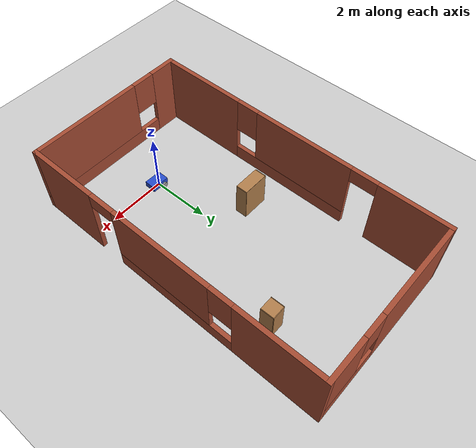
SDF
<sdf version="1.7">
 <world name="default">
  <light name="sun" type="directional">
   <pose>0 0 10 0 -0 0</pose>
   <diffuse>0.8 0.8 0.8 1</diffuse>
   <specular>0.2 0.2 0.2 1</specular>
   <attenuation>
    <range>1000</range>
    <constant>0.9</constant>
    <linear>0.01</linear>
    <quadratic>0.001</quadratic>
   </attenuation>
   <direction>-0.5 0.1 -0.9</direction>
   <spot><inner_angle>0</inner_angle><outer_angle>0</outer_angle><falloff>0</falloff></spot>
  </light>
  <model name="ground_plane">
   <static>1</static>
   <link name="link">
    <collision name="collision">
     <geometry><plane><normal>0 0 1</normal><size>100 100</size></plane></geometry>
     <surface>
      <contact><collide_bitmask>65535</collide_bitmask></contact>
      <friction><ode><mu>100</mu><mu2>50</mu2></ode></friction>
     </surface>
    </collision>
    <visual name="visual">
     <cast_shadows>0</cast_shadows>
     <geometry><plane><normal>0 0 1</normal><size>100 100</size></plane></geometry>
     <material>
      <script><uri>file://media/materials/scripts/gazebo.material</uri><name>Gazebo/Grey</name></script>
     </material>
    </visual>
   </link>
  </model>
  <gravity>0 0 -9.8</gravity>
  <magnetic_field>6e-06 2.3e-05 -4.2e-05</magnetic_field>
  <atmosphere type="adiabatic"/>
  <physics type="ode">
   <max_step_size>0.001</max_step_size>
   <real_time_factor>1</real_time_factor>
   <real_time_update_rate>1000</real_time_update_rate>
  </physics>
  <scene><ambient>0.4 0.4 0.4 1</ambient><background>0.7 0.7 0.7 1</background><shadows>1</shadows></scene>
  <audio><device>default</device></audio>
  <spherical_coordinates>
   <surface_model>EARTH_WGS84</surface_model>
   <latitude_deg>0</latitude_deg>
   <longitude_deg>0</longitude_deg>
   <elevation>0</elevation>
   <heading_deg>0</heading_deg>
  </spherical_coordinates>
  <model name="turtlebot">
   <link name="base_footprint_link">
    <inertial>
     <pose>0.018182 0 0.186364 0 -0 0</pose>
     <mass>5.5</mass>
     <inertia>
      <ixx>0.678894</ixx>
      <ixy>0</ixy>
      <ixz>0.0136364</ixz>
      <iyy>0.897076</iyy>
      <iyz>0</iyz>
      <izz>0.353515</izz>
     </inertia>
    </inertial>
    <collision name="base_footprint_link_fixed_joint_lump__base_link_collision">
     <pose>0 0 0.2 0 -0 0</pose>
     <geometry><box><size>0.6 0.4 0.2</size></box></geometry>
    </collision>
    <collision name="base_footprint_link_fixed_joint_lump__caster_wheel_link_collision_1">
     <pose>0.2 0 0.05 0 -0 0</pose>
     <geometry><sphere><radius>0.05</radius></sphere></geometry>
     <surface><friction><ode><mu>0.1</mu><mu2>0.1</mu2></ode></friction></surface>
    </collision>
    <visual name="base_footprint_link_fixed_joint_lump__base_link_visual">
     <pose>0 0 0.2 0 -0 0</pose>
     <geometry><box><size>0.6 0.4 0.2</size></box></geometry>
     <material>
      <script><name>Gazebo/Blue</name><uri>file://media/materials/scripts/gazebo.material</uri></script>
     </material>
    </visual>
    <visual name="base_footprint_link_fixed_joint_lump__caster_wheel_link_visual_1">
     <pose>0.2 0 0.05 0 -0 0</pose>
     <geometry><sphere><radius>0.05</radius></sphere></geometry>
     <material>
      <script><name>Gazebo/Grey</name><uri>file://media/materials/scripts/gazebo.material</uri></script>
     </material>
    </visual>
   </link>
   <joint name="base_left_wheel_joint" type="revolute">
    <pose relative_to="base_footprint_link">-0.15 0.225 0.1 0 -0 0</pose>
    <parent>base_footprint_link</parent>
    <child>left_wheel_link</child>
    <axis>
     <xyz>0 1 0</xyz>
     <limit><lower>-1e+16</lower><upper>1e+16</upper></limit>
     <dynamics><spring_reference>0</spring_reference><spring_stiffness>0</spring_stiffness></dynamics>
    </axis>
   </joint>
   <link name="left_wheel_link">
    <pose relative_to="base_left_wheel_joint">0 0 0 0 -0 0</pose>
    <inertial>
     <pose>0 0 0 1.5708 -0 0</pose>
     <mass>1</mass>
     <inertia><ixx>0.0108333</ixx><ixy>0</ixy><ixz>0</ixz><iyy>0.0108333</iyy><iyz>0</iyz><izz>0.02</izz></inertia>
    </inertial>
    <collision name="left_wheel_link_collision">
     <pose>0 0 0 1.5708 -0 0</pose>
     <geometry><cylinder><length>0.05</length><radius>0.1</radius></cylinder></geometry>
    </collision>
    <visual name="left_wheel_link_visual">
     <pose>0 0 0 1.5708 -0 0</pose>
     <geometry><cylinder><length>0.05</length><radius>0.1</radius></cylinder></geometry>
     <material>
      <script><name>Gazebo/Grey</name><uri>file://media/materials/scripts/gazebo.material</uri></script>
     </material>
    </visual>
   </link>
   <joint name="base_right_wheel_joint" type="revolute">
    <pose relative_to="base_footprint_link">-0.15 -0.225 0.1 0 -0 0</pose>
    <parent>base_footprint_link</parent>
    <child>right_wheel_link</child>
    <axis>
     <xyz>0 1 0</xyz>
     <limit><lower>-1e+16</lower><upper>1e+16</upper></limit>
     <dynamics><spring_reference>0</spring_reference><spring_stiffness>0</spring_stiffness></dynamics>
    </axis>
   </joint>
   <link name="right_wheel_link">
    <pose relative_to="base_right_wheel_joint">0 0 0 0 -0 0</pose>
    <inertial>
     <pose>0 0 0 1.5708 -0 0</pose>
     <mass>1</mass>
     <inertia><ixx>0.0108333</ixx><ixy>0</ixy><ixz>0</ixz><iyy>0.0108333</iyy><iyz>0</iyz><izz>0.02</izz></inertia>
    </inertial>
    <collision name="right_wheel_link_collision">
     <pose>0 0 0 1.5708 -0 0</pose>
     <geometry><cylinder><length>0.05</length><radius>0.1</radius></cylinder></geometry>
    </collision>
    <visual name="right_wheel_link_visual">
     <pose>0 0 0 1.5708 -0 0</pose>
     <geometry><cylinder><length>0.05</length><radius>0.1</radius></cylinder></geometry>
     <material>
      <script><name>Gazebo/Grey</name><uri>file://media/materials/scripts/gazebo.material</uri></script>
     </material>
    </visual>
   </link>
   <static>0</static>
   <plugin name="diff_drive_controller" filename="libgazebo_ros_diff_drive.so">
    <update_rate>50</update_rate>
    <left_joint>base_left_wheel_joint</left_joint>
    <right_joint>base_right_wheel_joint</right_joint>
    <wheel_separation>0.45</wheel_separation>
    <wheel_diameter>0.2</wheel_diameter>
    <publish_odom>1</publish_odom>
    <publish_odom_tf>1</publish_odom_tf>
    <publish_wheel_tf>1</publish_wheel_tf>
    <odometry_topic>odom</odometry_topic>
    <odometry_frame>odom</odometry_frame>
    <robot_base_frame>base_footprint_link</robot_base_frame>
   </plugin>
   <pose>0.105622 0.006227 -2e-06 0 -9e-06 -0.021023</pose>
  </model>
  <model name="bookshelf">
   <static>1</static>
   <link name="link">
    <inertial><mass>1</mass></inertial>
    <collision name="back">
     <pose>0 0.005 0.6 0 -0 0</pose>
     <geometry><box><size>0.9 0.01 1.2</size></box></geometry>
    </collision>
    <visual name="visual1">
     <pose>0 0.005 0.6 0 -0 0</pose>
     <geometry><box><size>0.9 0.01 1.2</size></box></geometry>
     <material>
      <script><uri>file://media/materials/scripts/gazebo.material</uri><name>Gazebo/Wood</name></script>
     </material>
    </visual>
    <collision name="left_side">
     <pose>0.45 -0.195 0.6 0 -0 0</pose>
     <geometry><box><size>0.02 0.4 1.2</size></box></geometry>
    </collision>
    <visual name="visual2">
     <pose>0.45 -0.195 0.6 0 -0 0</pose>
     <geometry><box><size>0.02 0.4 1.2</size></box></geometry>
     <material>
      <script><uri>file://media/materials/scripts/gazebo.material</uri><name>Gazebo/Wood</name></script>
     </material>
    </visual>
    <collision name="right_side">
     <pose>-0.45 -0.195 0.6 0 -0 0</pose>
     <geometry><box><size>0.02 0.4 1.2</size></box></geometry>
    </collision>
    <visual name="visual3">
     <pose>-0.45 -0.195 0.6 0 -0 0</pose>
     <geometry><box><size>0.02 0.4 1.2</size></box></geometry>
     <material>
      <script><uri>file://media/materials/scripts/gazebo.material</uri><name>Gazebo/Wood</name></script>
     </material>
    </visual>
    <collision name="bottom">
     <pose>0 -0.195 0.03 0 -0 0</pose>
     <geometry><box><size>0.88 0.4 0.06</size></box></geometry>
    </collision>
    <visual name="visual4">
     <pose>0 -0.195 0.03 0 -0 0</pose>
     <geometry><box><size>0.88 0.4 0.06</size></box></geometry>
     <material>
      <script><uri>file://media/materials/scripts/gazebo.material</uri><name>Gazebo/Wood</name></script>
     </material>
    </visual>
    <collision name="top">
     <pose>0 -0.195 1.19 0 -0 0</pose>
     <geometry><box><size>0.88 0.4 0.02</size></box></geometry>
    </collision>
    <visual name="visual5">
     <pose>0 -0.195 1.19 0 -0 0</pose>
     <geometry><box><size>0.88 0.4 0.02</size></box></geometry>
     <material>
      <script><uri>file://media/materials/scripts/gazebo.material</uri><name>Gazebo/Wood</name></script>
     </material>
    </visual>
    <collision name="low_shelf">
     <pose>0 -0.195 0.43 0 -0 0</pose>
     <geometry><box><size>0.88 0.4 0.02</size></box></geometry>
    </collision>
    <visual name="visual6">
     <pose>0 -0.195 0.43 0 -0 0</pose>
     <geometry><box><size>0.88 0.4 0.02</size></box></geometry>
     <material>
      <script><uri>file://media/materials/scripts/gazebo.material</uri><name>Gazebo/Wood</name></script>
     </material>
    </visual>
    <collision name="high_shelf">
     <pose>0 -0.195 0.8 0 -0 0</pose>
     <geometry><box><size>0.88 0.4 0.02</size></box></geometry>
    </collision>
    <visual name="visual7">
     <pose>0 -0.195 0.8 0 -0 0</pose>
     <geometry><box><size>0.88 0.4 0.02</size></box></geometry>
     <material>
      <script><uri>file://media/materials/scripts/gazebo.material</uri><name>Gazebo/Wood</name></script>
     </material>
    </visual>
   </link>
   <pose>-1.23898 3.14026 0.130858 0 -0 0</pose>
  </model>
  <model name="cabinet">
   <static>1</static>
   <link name="cabinet_bottom_plate">
    <inertial>
     <pose>0 0 -1 0 -0 0</pose>
     <inertia><ixx>2.05</ixx><ixy>0</ixy><ixz>0</ixz><iyy>2.05</iyy><iyz>0</iyz><izz>2.05</izz></inertia>
     <mass>25</mass>
    </inertial>
    <collision name="cabinet_bottom_plate_geom">
     <pose>0 0 0.01 0 -0 0</pose>
     <geometry><box><size>0.45 0.45 0.02</size></box></geometry>
    </collision>
    <visual name="cabinet_bottom_plate_geom_visual">
     <pose>0 0 0.01 0 -0 0</pose>
     <geometry><box><size>0.45 0.45 0.02</size></box></geometry>
     <material>
      <script><uri>file://media/materials/scripts/gazebo.material</uri><name>Gazebo/Wood</name></script>
     </material>
    </visual>
    <collision name="cabinet_bottom_plate_geom_cabinet_back_plate">
     <pose>0.235 0 0.51 0 -0 0</pose>
     <geometry><box><size>0.02 0.45 1.02</size></box></geometry>
    </collision>
    <visual name="cabinet_bottom_plate_geom_cabinet_back_plate_visual">
     <pose>0.235 0 0.51 0 -0 0</pose>
     <geometry><box><size>0.02 0.45 1.02</size></box></geometry>
     <material>
      <script><uri>file://media/materials/scripts/gazebo.material</uri><name>Gazebo/Wood</name></script>
     </material>
    </visual>
    <collision name="cabinet_bottom_plate_geom_cabinet_left_plate">
     <pose>0 0.235 0.51 0 -0 0</pose>
     <geometry><box><size>0.45 0.02 1.02</size></box></geometry>
    </collision>
    <visual name="cabinet_bottom_plate_geom_cabinet_left_plate_visual">
     <pose>0 0.235 0.51 0 -0 0</pose>
     <geometry><box><size>0.45 0.02 1.02</size></box></geometry>
     <material>
      <script><uri>file://media/materials/scripts/gazebo.material</uri><name>Gazebo/Wood</name></script>
     </material>
    </visual>
    <collision name="cabinet_bottom_plate_geom_cabinet_middle_plate">
     <pose>0 0 0.51 0 -0 0</pose>
     <geometry><box><size>0.45 0.45 0.02</size></box></geometry>
    </collision>
    <visual name="cabinet_bottom_plate_geom_cabinet_middle_plate_visual">
     <pose>0 0 0.51 0 -0 0</pose>
     <geometry><box><size>0.45 0.45 0.02</size></box></geometry>
     <material>
      <script><uri>file://media/materials/scripts/gazebo.material</uri><name>Gazebo/Wood</name></script>
     </material>
    </visual>
    <collision name="cabinet_bottom_plate_geom_cabinet_right_plate">
     <pose>0 -0.235 0.51 0 -0 0</pose>
     <geometry><box><size>0.45 0.02 1.02</size></box></geometry>
    </collision>
    <visual name="cabinet_bottom_plate_geom_cabinet_right_plate_visual">
     <pose>0 -0.235 0.51 0 -0 0</pose>
     <geometry><box><size>0.45 0.02 1.02</size></box></geometry>
     <material>
      <script><uri>file://media/materials/scripts/gazebo.material</uri><name>Gazebo/Wood</name></script>
     </material>
    </visual>
    <collision name="cabinet_bottom_plate_geom_cabinet_top_plate">
     <pose>0 0 1.01 0 -0 0</pose>
     <geometry><box><size>0.45 0.45 0.02</size></box></geometry>
    </collision>
    <visual name="cabinet_bottom_plate_geom_cabinet_top_plate_visual">
     <pose>0 0 1.01 0 -0 0</pose>
     <geometry><box><size>0.45 0.45 0.02</size></box></geometry>
     <material>
      <script><uri>file://media/materials/scripts/gazebo.material</uri><name>Gazebo/Wood</name></script>
     </material>
    </visual>
   </link>
   <pose>1.59968 6.10039 0 0 -0 1.58061</pose>
  </model>
  <model name="test">
   <pose>0.05 3.38 0 0 -0 0</pose>
   <link name="Wall_13">
    <pose>-2.8 -0 0 0 -0 1.5708</pose>
    <visual name="Wall_13_Visual_0">
     <pose>-3.81018 0 1.25 0 -0 0</pose>
     <geometry><box><size>3.12964 0.15 2.5</size></box></geometry>
     <material>
      <script><uri>file://media/materials/scripts/gazebo.material</uri><name>Gazebo/Bricks</name></script>
      <ambient>1 1 1 1</ambient>
     </material>
     <meta><layer>0</layer></meta>
    </visual>
    <collision name="Wall_13_Collision_0">
     <geometry><box><size>3.12964 0.15 2.5</size></box></geometry>
     <pose>-3.81018 0 1.25 0 -0 0</pose>
    </collision>
    <visual name="Wall_13_Visual_1">
     <pose>4.17104 0 1.25 0 -0 0</pose>
     <geometry><box><size>2.40792 0.15 2.5</size></box></geometry>
     <material>
      <script><uri>file://media/materials/scripts/gazebo.material</uri><name>Gazebo/Bricks</name></script>
      <ambient>1 1 1 1</ambient>
     </material>
     <meta><layer>0</layer></meta>
    </visual>
    <collision name="Wall_13_Collision_1">
     <geometry><box><size>2.40792 0.15 2.5</size></box></geometry>
     <pose>4.17104 0 1.25 0 -0 0</pose>
    </collision>
    <visual name="Wall_13_Visual_2">
     <pose>-0.089141 0 0.25 0 -0 0</pose>
     <geometry><box><size>4.31243 0.15 0.5</size></box></geometry>
     <material>
      <script><uri>file://media/materials/scripts/gazebo.material</uri><name>Gazebo/Bricks</name></script>
      <ambient>1 1 1 1</ambient>
     </material>
     <meta><layer>0</layer></meta>
    </visual>
    <collision name="Wall_13_Collision_2">
     <geometry><box><size>4.31243 0.15 0.5</size></box></geometry>
     <pose>-0.089141 0 0.25 0 -0 0</pose>
    </collision>
    <visual name="Wall_13_Visual_3">
     <pose>0.310859 0 1.5 0 -0 0</pose>
     <geometry><box><size>3.51243 0.15 2</size></box></geometry>
     <material>
      <script><uri>file://media/materials/scripts/gazebo.material</uri><name>Gazebo/Bricks</name></script>
      <ambient>1 1 1 1</ambient>
     </material>
     <meta><layer>0</layer></meta>
    </visual>
    <collision name="Wall_13_Collision_3">
     <geometry><box><size>3.51243 0.15 2</size></box></geometry>
     <pose>0.310859 0 1.5 0 -0 0</pose>
    </collision>
    <visual name="Wall_13_Visual_4">
     <pose>-1.84536 0 1.9 0 -0 0</pose>
     <geometry><box><size>0.8 0.15 1.2</size></box></geometry>
     <material>
      <script><uri>file://media/materials/scripts/gazebo.material</uri><name>Gazebo/Bricks</name></script>
      <ambient>1 1 1 1</ambient>
     </material>
     <meta><layer>0</layer></meta>
    </visual>
    <collision name="Wall_13_Collision_4">
     <geometry><box><size>0.8 0.15 1.2</size></box></geometry>
     <pose>-1.84536 0 1.9 0 -0 0</pose>
    </collision>
    <visual name="Wall_13_Visual_5">
     <pose>2.51708 0 2.25 0 -0 0</pose>
     <geometry><box><size>0.9 0.15 0.5</size></box></geometry>
     <material>
      <script><uri>file://media/materials/scripts/gazebo.material</uri><name>Gazebo/Bricks</name></script>
      <ambient>1 1 1 1</ambient>
     </material>
     <meta><layer>0</layer></meta>
    </visual>
    <collision name="Wall_13_Collision_5">
     <geometry><box><size>0.9 0.15 0.5</size></box></geometry>
     <pose>2.51708 0 2.25 0 -0 0</pose>
    </collision>
   </link>
   <link name="Wall_14">
    <pose>0 5.3 0 0 -0 0</pose>
    <visual name="Wall_14_Visual_0">
     <pose>-1.15511 0 1.25 0 -0 0</pose>
     <geometry><box><size>3.43978 0.15 2.5</size></box></geometry>
     <material>
      <script><uri>file://media/materials/scripts/gazebo.material</uri><name>Gazebo/Bricks</name></script>
      <ambient>1 1 1 1</ambient>
     </material>
     <meta><layer>0</layer></meta>
    </visual>
    <collision name="Wall_14_Collision_0">
     <geometry><box><size>3.43978 0.15 2.5</size></box></geometry>
     <pose>-1.15511 0 1.25 0 -0 0</pose>
    </collision>
    <visual name="Wall_14_Visual_1">
     <pose>1.71989 0 0.25 0 -0 0</pose>
     <geometry><box><size>2.31022 0.15 0.5</size></box></geometry>
     <material>
      <script><uri>file://media/materials/scripts/gazebo.material</uri><name>Gazebo/Bricks</name></script>
      <ambient>1 1 1 1</ambient>
     </material>
     <meta><layer>0</layer></meta>
    </visual>
    <collision name="Wall_14_Collision_1">
     <geometry><box><size>2.31022 0.15 0.5</size></box></geometry>
     <pose>1.71989 0 0.25 0 -0 0</pose>
    </collision>
    <visual name="Wall_14_Visual_2">
     <pose>2.11989 0 1.5 0 -0 0</pose>
     <geometry><box><size>1.51022 0.15 2</size></box></geometry>
     <material>
      <script><uri>file://media/materials/scripts/gazebo.material</uri><name>Gazebo/Bricks</name></script>
      <ambient>1 1 1 1</ambient>
     </material>
     <meta><layer>0</layer></meta>
    </visual>
    <collision name="Wall_14_Collision_2">
     <geometry><box><size>1.51022 0.15 2</size></box></geometry>
     <pose>2.11989 0 1.5 0 -0 0</pose>
    </collision>
    <visual name="Wall_14_Visual_3">
     <pose>0.964781 0 1.9 0 -0 0</pose>
     <geometry><box><size>0.8 0.15 1.2</size></box></geometry>
     <material>
      <script><uri>file://media/materials/scripts/gazebo.material</uri><name>Gazebo/Bricks</name></script>
      <ambient>1 1 1 1</ambient>
     </material>
     <meta><layer>0</layer></meta>
    </visual>
    <collision name="Wall_14_Collision_3">
     <geometry><box><size>0.8 0.15 1.2</size></box></geometry>
     <pose>0.964781 0 1.9 0 -0 0</pose>
    </collision>
   </link>
   <link name="Wall_15">
    <pose>2.8 -0 0 0 -0 -1.5708</pose>
    <visual name="Wall_15_Visual_0">
     <pose>-3.89334 0 1.25 0 -0 0</pose>
     <geometry><box><size>2.96333 0.15 2.5</size></box></geometry>
     <material>
      <script><uri>file://media/materials/scripts/gazebo.material</uri><name>Gazebo/Bricks</name></script>
      <ambient>1 1 1 1</ambient>
     </material>
     <meta><layer>0</layer></meta>
    </visual>
    <collision name="Wall_15_Collision_0">
     <geometry><box><size>2.96333 0.15 2.5</size></box></geometry>
     <pose>-3.89334 0 1.25 0 -0 0</pose>
    </collision>
    <visual name="Wall_15_Visual_1">
     <pose>4.11448 0 1.25 0 -0 0</pose>
     <geometry><box><size>2.52104 0.15 2.5</size></box></geometry>
     <material>
      <script><uri>file://media/materials/scripts/gazebo.material</uri><name>Gazebo/Bricks</name></script>
      <ambient>1 1 1 1</ambient>
     </material>
     <meta><layer>0</layer></meta>
    </visual>
    <collision name="Wall_15_Collision_1">
     <geometry><box><size>2.52104 0.15 2.5</size></box></geometry>
     <pose>4.11448 0 1.25 0 -0 0</pose>
    </collision>
    <visual name="Wall_15_Visual_2">
     <pose>-0.228855 0 0.25 0 -0 0</pose>
     <geometry><box><size>4.36563 0.15 0.5</size></box></geometry>
     <material>
      <script><uri>file://media/materials/scripts/gazebo.material</uri><name>Gazebo/Bricks</name></script>
      <ambient>1 1 1 1</ambient>
     </material>
     <meta><layer>0</layer></meta>
    </visual>
    <collision name="Wall_15_Collision_2">
     <geometry><box><size>4.36563 0.15 0.5</size></box></geometry>
     <pose>-0.228855 0 0.25 0 -0 0</pose>
    </collision>
    <visual name="Wall_15_Visual_3">
     <pose>0.171145 0 1.5 0 -0 0</pose>
     <geometry><box><size>3.56563 0.15 2</size></box></geometry>
     <material>
      <script><uri>file://media/materials/scripts/gazebo.material</uri><name>Gazebo/Bricks</name></script>
      <ambient>1 1 1 1</ambient>
     </material>
     <meta><layer>0</layer></meta>
    </visual>
    <collision name="Wall_15_Collision_3">
     <geometry><box><size>3.56563 0.15 2</size></box></geometry>
     <pose>0.171145 0 1.5 0 -0 0</pose>
    </collision>
    <visual name="Wall_15_Visual_4">
     <pose>-2.01167 0 1.9 0 -0 0</pose>
     <geometry><box><size>0.8 0.15 1.2</size></box></geometry>
     <material>
      <script><uri>file://media/materials/scripts/gazebo.material</uri><name>Gazebo/Bricks</name></script>
      <ambient>1 1 1 1</ambient>
     </material>
     <meta><layer>0</layer></meta>
    </visual>
    <collision name="Wall_15_Collision_4">
     <geometry><box><size>0.8 0.15 1.2</size></box></geometry>
     <pose>-2.01167 0 1.9 0 -0 0</pose>
    </collision>
    <visual name="Wall_15_Visual_5">
     <pose>2.40396 0 2.25 0 -0 0</pose>
     <geometry><box><size>0.9 0.15 0.5</size></box></geometry>
     <material>
      <script><uri>file://media/materials/scripts/gazebo.material</uri><name>Gazebo/Bricks</name></script>
      <ambient>1 1 1 1</ambient>
     </material>
     <meta><layer>0</layer></meta>
    </visual>
    <collision name="Wall_15_Collision_5">
     <geometry><box><size>0.9 0.15 0.5</size></box></geometry>
     <pose>2.40396 0 2.25 0 -0 0</pose>
    </collision>
   </link>
   <link name="Wall_5">
    <pose>0 -5.3 0 0 -0 0</pose>
    <visual name="Wall_5_Visual_0">
     <pose>-2.37872 0 1.25 0 -0 0</pose>
     <geometry><box><size>0.992563 0.15 2.5</size></box></geometry>
     <material>
      <script><uri>file://media/materials/scripts/gazebo.material</uri><name>Gazebo/Bricks</name></script>
      <ambient>1 1 1 1</ambient>
     </material>
     <meta><layer>0</layer></meta>
    </visual>
    <collision name="Wall_5_Collision_0">
     <geometry><box><size>0.992563 0.15 2.5</size></box></geometry>
     <pose>-2.37872 0 1.25 0 -0 0</pose>
    </collision>
    <visual name="Wall_5_Visual_1">
     <pose>0.496282 0 0.25 0 -0 0</pose>
     <geometry><box><size>4.75744 0.15 0.5</size></box></geometry>
     <material>
      <script><uri>file://media/materials/scripts/gazebo.material</uri><name>Gazebo/Bricks</name></script>
      <ambient>1 1 1 1</ambient>
     </material>
     <meta><layer>0</layer></meta>
    </visual>
    <collision name="Wall_5_Collision_1">
     <geometry><box><size>4.75744 0.15 0.5</size></box></geometry>
     <pose>0.496282 0 0.25 0 -0 0</pose>
    </collision>
    <visual name="Wall_5_Visual_2">
     <pose>0.896282 0 1.5 0 -0 0</pose>
     <geometry><box><size>3.95744 0.15 2</size></box></geometry>
     <material>
      <script><uri>file://media/materials/scripts/gazebo.material</uri><name>Gazebo/Bricks</name></script>
      <ambient>1 1 1 1</ambient>
     </material>
     <meta><layer>0</layer></meta>
    </visual>
    <collision name="Wall_5_Collision_2">
     <geometry><box><size>3.95744 0.15 2</size></box></geometry>
     <pose>0.896282 0 1.5 0 -0 0</pose>
    </collision>
    <visual name="Wall_5_Visual_3">
     <pose>-1.48244 0 1.9 0 -0 0</pose>
     <geometry><box><size>0.8 0.15 1.2</size></box></geometry>
     <material>
      <script><uri>file://media/materials/scripts/gazebo.material</uri><name>Gazebo/Bricks</name></script>
      <ambient>1 1 1 1</ambient>
     </material>
     <meta><layer>0</layer></meta>
    </visual>
    <collision name="Wall_5_Collision_3">
     <geometry><box><size>0.8 0.15 1.2</size></box></geometry>
     <pose>-1.48244 0 1.9 0 -0 0</pose>
    </collision>
   </link>
   <static>1</static>
  </model>
 </world>
</sdf>
